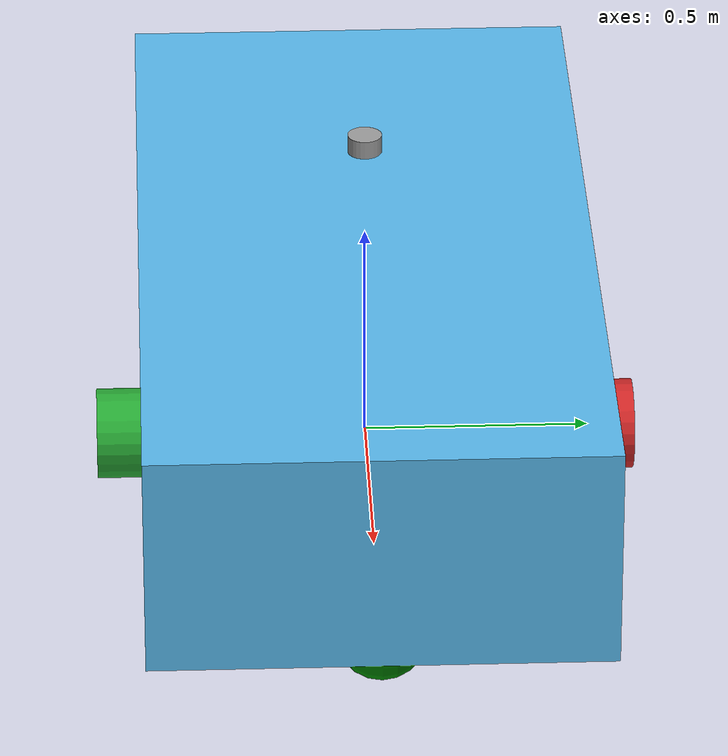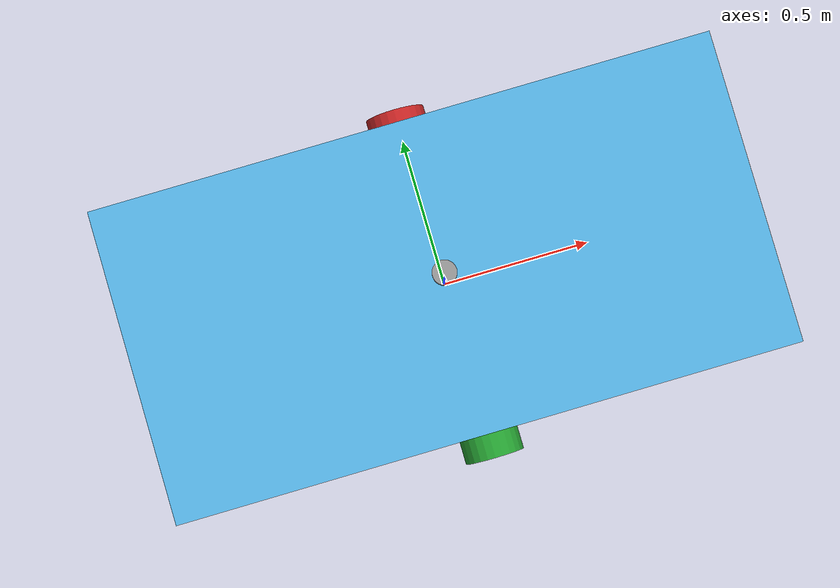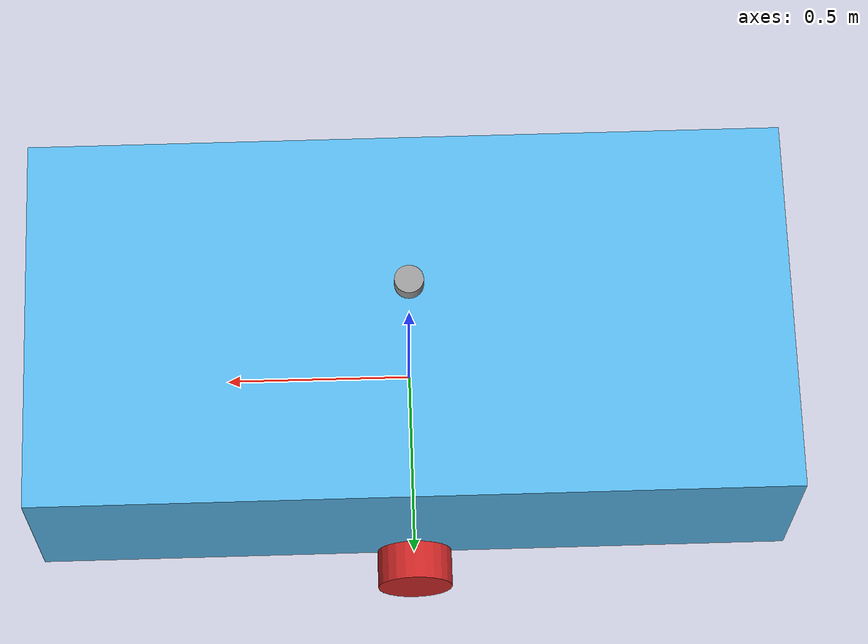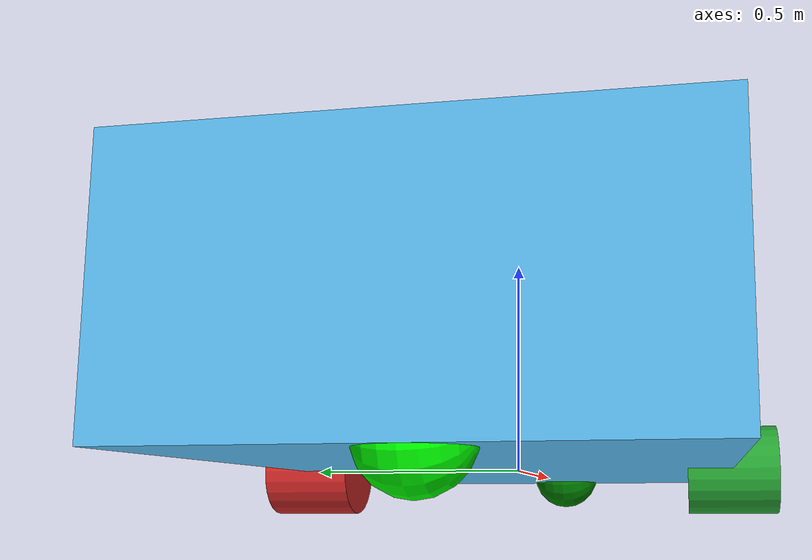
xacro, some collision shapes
<?xml version="1.0"?>

<robot xmlns:xacro="http://www.ros.org/wiki/xacro" name="robot_boat">

    <xacro:include filename="$(find robot_boat_description_pkg)/urdf/robot_boat.gazebo.xacro" />

    <xacro:gazebo_elements />

<!-- Properties -->
<xacro:property name="body_width" value="1.0"/>
<xacro:property name="body_lenght" value="2.0"/>
<xacro:property name="body_height" value="0.5"/>

<xacro:property name="wheel_width" value="0.2"/>
<xacro:property name="wheel_radius" value="0.1"/>
<xacro:property name="wheel_distance" value="${body_width}"/>

<xacro:property name="caster_radius" value="0.1"/>

  <material name="red">
      <color rgba="1.0 0.0 0.0 1"/>
  </material>

  <material name="green_light">
      <color rgba="0.0 1.0 0.0 1"/>
  </material>

  <material name="green_dark">
    <color rgba="0.0 0.5 0.0 1"/>
  </material>

  <material name="blue">
      <color rgba="0.0 0.0 1.0 1"/>
  </material>

  <link name="base_link">
  </link>

  <!-- Body -->
  <link name="chassis">
    <visual>
      <geometry>
        <mesh filename="package://robot_boat_description_pkg/meshes/cute_cube.dae" scale="${body_lenght} ${body_width}  ${body_height}"/>
      </geometry>
    </visual>

    <collision>
      <geometry>
        <box size="${body_lenght} ${body_width} ${body_height}"/>
      </geometry>
    </collision>

    <inertial>
      <mass value="30"/>
      <origin rpy="0 0 0" xyz="0 0 0"/>
      <inertia ixx="3.125" ixy="0" ixz="0" iyy="10.62" iyz="0" izz="12.5"/>
    </inertial>

  </link>

  <joint name="base_link_joint" type="fixed">
    <origin rpy="0 0 0" xyz="0 0 ${body_height / 2.0}" />
    <parent link="base_link" />
    <child link="chassis" />
  </joint>

    <!-- Wheel Macro -->
    <xacro:macro name="wheel" params="wheel_name">
    <link name="${wheel_name}">
        <visual>
            <origin rpy="0 1.5707 1.5707" xyz="0 0 0"/>
            <geometry>
            <cylinder length="${wheel_width}" radius="${wheel_radius}"/>
            </geometry>
        </visual>

        <collision>
            <origin rpy="0 1.5707 1.5707" xyz="0 0 0"/>
            <geometry>
            <cylinder length="${wheel_width}" radius="${wheel_radius}"/>
            </geometry>
        </collision>

        <inertial>
            <origin rpy="0 1.5707 1.5707" xyz="0 0 0"/>
            <mass value="1"/>
            <inertia ixx="0.0058" ixy="0" ixz="0" iyy="0.0058" iyz="0" izz="0.005"/>
        </inertial>
    </link>
    </xacro:macro>

    <!-- Wheel Left -->
    <xacro:wheel wheel_name="left_wheel" />

    <!-- Wheel Right -->
    <xacro:wheel wheel_name="right_wheel" />

  <joint name="joint_left_wheel" type="continuous">
    <origin rpy="0 0 0" xyz="0 ${body_width/2} -${body_height/2}"/>
    <child link="left_wheel"/>
    <parent link="chassis"/>
    <axis rpy="0 0 0" xyz="0 1 0"/>
    <limit effort="1000" velocity="1000"/>
    <joint_properties damping="0" friction="0.1"/>
  </joint>

  <joint name="joint_right_wheel" type="continuous">
    <origin rpy="0 0 0" xyz="0 -${body_width/2} -${body_height/2}"/>
    <child link="right_wheel"/>
    <parent link="chassis"/>
    <axis rpy="0 0 0" xyz="0 1 0"/>
    <limit effort="1000" velocity="1000"/>
    <joint_properties damping="0" friction="0.1"/>
  </joint>

  <!-- Caster Wheel Front -->
  <link name="front_yaw_link">
      <visual>
        <origin rpy="0 1.5707 1.5707" xyz="0 0 0"/>
        <geometry>
          <cylinder length="0.001" radius="0.0045000000000000005"/>
        </geometry>
        <material name="blue"/>
      </visual>

      <collision>
        <origin rpy="0 1.5707 1.5707" xyz="0 0 0"/>
        <geometry>
          <cylinder length="0.001" radius="0.0045000000000000005"/>
        </geometry>
      </collision>

      <inertial>
          <origin rpy="0 1.5707 1.5707" xyz="0 0 0"/>
          <mass value="0.001"/>
          <inertia ixx="5.145833333333334e-09" ixy="0" ixz="0" iyy="5.145833333333334e-09" iyz="0" izz="1.0125000000000003e-08"/>
      </inertial>

  </link>

  <joint name="front_yaw_joint" type="continuous">
    <origin rpy="0 0 0" xyz="${body_lenght / 2 - 0.1} 0 -${body_height / 2 - 0.02 }" />
    <parent link="chassis" />
    <child link="front_yaw_link" />
    <axis xyz="0 0 1" />
    <limit effort="1000.0" velocity="100.0" />
    <dynamics damping="0.0" friction="0.1"/>
  </joint>

  <link name="front_roll_link">
      <visual>
        <origin rpy="0 1.5707 1.5707" xyz="0 0 0"/>
        <geometry>
          <cylinder length="0.001" radius="0.0045000000000000005"/>
        </geometry>
        <material name="red"/>
      </visual>

      <collision>
        <origin rpy="0 1.5707 1.5707" xyz="0 0 0"/>
        <geometry>
          <cylinder length="0.001" radius="0.0045000000000000005"/>
        </geometry>
      </collision>

      <inertial>
          <origin rpy="0 1.5707 1.5707" xyz="0 0 0"/>
          <mass value="0.001"/>
          <inertia ixx="5.145833333333334e-09" ixy="0" ixz="0" iyy="5.145833333333334e-09" iyz="0" izz="1.0125000000000003e-08"/>
      </inertial>
  </link>

  <joint name="front_roll_joint" type="continuous">
    <origin rpy="0 0 0" xyz="0 0 0" />
    <parent link="front_yaw_link" />
    <child link="front_roll_link" />
    <axis xyz="1 0 0" />
    <limit effort="1000.0" velocity="100.0" />
    <dynamics damping="0.0" friction="0.1"/>
  </joint>

  <link name="front_pitch_link">
    <visual>
      <origin rpy="0 1.5707 1.5707" xyz="0 0 0"/>
      <geometry>
        <sphere radius="${caster_radius}"/>
      </geometry>
      <material name="green_dark"/>
    </visual>

    <collision>
      <origin rpy="0 1.5707 1.5707" xyz="0 0 0"/>
      <geometry>
        <sphere radius="${caster_radius}"/>
      </geometry>
    </collision>

    <inertial>
        <origin rpy="0 1.5707 1.5707" xyz="0 0 0"/>
        <mass value="0.001"/>
        <inertia ixx="4e-08" ixy="0" ixz="0" iyy="4e-08" iyz="0" izz="4e-08"/>
    </inertial>
  </link>

  <joint name="front_pitch_joint" type="continuous">
    <origin rpy="0 0 0" xyz="0 0 0" />
    <parent link="front_roll_link" />
    <child link="front_pitch_link" />
    <axis xyz="0 1 0" />
    <limit effort="1000.0" velocity="100.0" />
    <dynamics damping="0.0" friction="0.1"/>
  </joint>

<!-- Caster Wheel Back -->
  <link name="back_yaw_link">
    <visual>
        <origin rpy="0 1.5707 1.5707" xyz="0 0 0"/>
        <geometry>
          <cylinder length="0.001" radius="0.0045000000000000005"/>
        </geometry>
        <material name="blue"/>
      </visual>

      <collision>
        <origin rpy="0 1.5707 1.5707" xyz="0 0 0"/>
        <geometry>
          <cylinder length="0.001" radius="0.0045000000000000005"/>
        </geometry>
      </collision>

      <inertial>
          <origin rpy="0 1.5707 1.5707" xyz="0 0 0"/>
          <mass value="0.001"/>
          <inertia ixx="5.145833333333334e-09" ixy="0" ixz="0" iyy="5.145833333333334e-09" iyz="0" izz="1.0125000000000003e-08"/>
      </inertial>
  </link>

  <joint name="back_yaw_joint" type="continuous">
    <origin rpy="0 0 0" xyz="-${body_lenght / 2.0 - 0.1} 0 -${body_height / 2 - 0.02 }" />
    <parent link="chassis" />
    <child link="back_yaw_link" />
    <axis xyz="0 0 1" />
    <limit effort="1000.0" velocity="100.0" />
    <dynamics damping="0.0" friction="0.1"/>
  </joint>

  <link name="back_roll_link">
      <visual>
        <origin rpy="0 1.5707 1.5707" xyz="0 0 0"/>
        <geometry>
          <cylinder length="0.001" radius="0.0045000000000000005"/>
        </geometry>
        <material name="red"/>
      </visual>

      <collision>
        <origin rpy="0 1.5707 1.5707" xyz="0 0 0"/>
        <geometry>
          <cylinder length="0.001" radius="0.0045000000000000005"/>
        </geometry>
      </collision>

      <inertial>
          <origin rpy="0 1.5707 1.5707" xyz="0 0 0"/>
          <mass value="0.001"/>
          <inertia ixx="5.145833333333334e-09" ixy="0" ixz="0" iyy="5.145833333333334e-09" iyz="0" izz="1.0125000000000003e-08"/>
      </inertial>
  </link>

  <joint name="back_roll_joint" type="continuous">
    <origin rpy="0 0 0" xyz="0 0 0" />
    <parent link="back_yaw_link" />
    <child link="back_roll_link" />
    <axis xyz="1 0 0" />
    <limit effort="1000.0" velocity="100.0" />
    <dynamics damping="0.0" friction="0.1"/>
  </joint>

  <link name="back_pitch_link">
    <visual>
      <origin rpy="0 1.5707 1.5707" xyz="0 0 0"/>
      <geometry>
        <sphere radius="${caster_radius}"/>
      </geometry>
      <material name="green_light"/>
    </visual>

    <collision>
      <origin rpy="0 1.5707 1.5707" xyz="0 0 0"/>
      <geometry>
        <sphere radius="${caster_radius}"/>
      </geometry>
    </collision>

    <inertial>
        <origin rpy="0 1.5707 1.5707" xyz="0 0 0"/>
        <mass value="0.001"/>
        <inertia ixx="4e-08" ixy="0" ixz="0" iyy="4e-08" iyz="0" izz="4e-08"/>
    </inertial>
  </link>

  <joint name="back_pitch_joint" type="continuous">
    <origin rpy="0 0 0" xyz="0 0 0" />
    <parent link="back_roll_link" />
    <child link="back_pitch_link" />
    <axis xyz="0 1 0" />
    <limit effort="1000.0" velocity="100.0" />
    <dynamics damping="0.0" friction="0.1"/>
  </joint>

  <!-- PLUGINS -->

  <!-- JOINT PUBLISHER -->
  <gazebo>
    <plugin name="box_bot_joint_state" filename="libgazebo_ros_joint_state_publisher.so">
      <ros>
          <remapping>~/out:=robot_boat/joint_states</remapping>
      </ros>
      <update_rate>30</update_rate>

      <joint_name>joint_left_wheel</joint_name>
      <joint_name>joint_right_wheel</joint_name>
      <joint_name>front_yaw_joint</joint_name>
      <joint_name>back_yaw_joint</joint_name>
      <joint_name>front_roll_joint</joint_name>
      <joint_name>back_roll_joint</joint_name>
      <joint_name>front_pitch_joint</joint_name>
      <joint_name>back_pitch_joint</joint_name>

    </plugin>
  </gazebo>

  <!-- Differential drive -->
  <gazebo>
    <plugin filename="libgazebo_ros_diff_drive.so" name="differential_drive_controller">

        <ros>
            <namespace>robot_boat</namespace>
            <remapping>/odom:=odom</remapping>
        </ros>

        <update_rate>10</update_rate>
        <!-- Wheel joints -->
        <left_joint>joint_left_wheel</left_joint>
        <right_joint>joint_right_wheel</right_joint>
        <!-- Kinematics -->
        <wheel_separation>${wheel_distance}</wheel_separation>
        <wheel_diameter>${wheel_radius*2}</wheel_diameter>
        <publish_odom>true</publish_odom>
        <!-- TF frames -->
        <publish_odom_tf>true</publish_odom_tf>
        <publish_wheel_tf>false</publish_wheel_tf>
        <odometry_frame>robot_boat/odom</odometry_frame>
        <robot_base_frame>base_link</robot_base_frame>
        <!-- Limits -->
        <max_wheel_torque>100.0</max_wheel_torque>
        <max_wheel_acceleration>0.2</max_wheel_acceleration>

    </plugin>
  </gazebo>

    <!-- Laser Position Control-->

  <link name="laser_scan_link">

    <inertial>
      <mass value="0.01"/>
      <origin rpy="0 0 0" xyz="0 0 0.0204"/>
      <inertia ixx="6.066578520833334e-06" ixy="0" ixz="0" iyy="6.072950163333333e-06" iyz="0" izz="9.365128684166666e-06"/>
    </inertial>

  </link>

  <joint name="laser_scan_link_joint" type="fixed">
    <origin rpy="0 0 0" xyz="0.0 0.0 ${body_height/2}"/>
    <parent link="chassis"/>
    <child link="laser_scan_link"/>
  </joint>

  <link name="laser_scan_frame">
    <visual>
      <origin rpy="0 0 0" xyz="0 0 0"/>
      <geometry>
        <mesh filename="package://robot_boat_description_pkg/meshes/sensors/rplidar.dae" scale="1.0 1.0 1.0"/>
      </geometry>
    </visual>

    <collision>
       <origin rpy="0 0 0" xyz="0 0 0.0204"/>
      <geometry>
        <cylinder length="0.0408" radius="0.037493"/>
      </geometry>
    </collision>

    <inertial>
      <mass value="0.01"/>
      <origin rpy="0 0 0" xyz="0 0 0.0204"/>
      <inertia ixx="6.066578520833334e-06" ixy="0" ixz="0" iyy="6.072950163333333e-06" iyz="0" izz="9.365128684166666e-06"/>
    </inertial>
  </link>

  <joint name="laser_scan_frame_joint" type="fixed">
    <origin rpy="0 0 0" xyz="0 0 0.2"/>
    <parent link="laser_scan_link"/>
    <child link="laser_scan_frame"/>
    <axis xyz="0 0 0"/>
  </joint>

  <gazebo reference="laser_scan_frame_joint">
    <preserveFixedJoint>true</preserveFixedJoint>
  </gazebo>

  <!-- Lser plugin -->
<gazebo reference="laser_scan_frame">
    <sensor name="sensor_ray" type="ray">
        <pose>0 0 0 0 0 0</pose>
        <ray>
          <scan>
            <horizontal>
              <samples>720</samples>
              <resolution>1.0</resolution>
              <min_angle>-3.14</min_angle>
              <max_angle>3.14</max_angle>
            </horizontal>
          </scan>
          <range>
            <min>1.2</min>
            <max>20</max>
          </range>
        </ray>
        <always_on>true</always_on>
        <visualize>false</visualize>
        <update_rate>5</update_rate>
        <plugin name="laser" filename="libgazebo_ros_ray_sensor.so">
          <ros>
            <namespace>/robot_boat</namespace>
            <remapping>~/out:=laser_scan</remapping>
          </ros>
          <output_type>sensor_msgs/LaserScan</output_type>
          <frame_name>laser_scan_frame</frame_name>
        </plugin>
    </sensor>
</gazebo>

  <!-- GPS plugin -->
<gazebo reference="laser_scan_frame">
    <sensor name="gps_sensor" type="gps">
        <always_on>true</always_on>
        <update_rate>1.0</update_rate>

        <noise>
            <!-- Use gaussian noise -->
            <type>gaussian</type>
            <mean>0.0</mean>
            <stddev>0.5</stddev>
        </noise>

        <plugin name="gps_controller" filename="libgazebo_ros_gps_sensor.so">
            <ros>
                <namespace>/robot_boat</namespace>
                <remapping>gps_controller/out:=gps</remapping>
            </ros>
            <frame_name>laser_scan_frame</frame_name>
        </plugin>
    </sensor>
    <material>Gazebo/Grey</material>
</gazebo>

    <!-- P3D plugin -->
    <gazebo>
        <plugin name="gazebo_ros_p3d" filename="libgazebo_ros_p3d.so">

        <ros>
            <namespace>robot_boat</namespace>
            <remapping>odom:=p3d</remapping>
        </ros>

        <frame_name>robot_boat/odom</frame_name>
        <body_name>laser_scan_frame</body_name>
        <update_rate>5.0</update_rate>
        <gaussian_noise>0.01</gaussian_noise>

        </plugin>
    </gazebo>

</robot>
